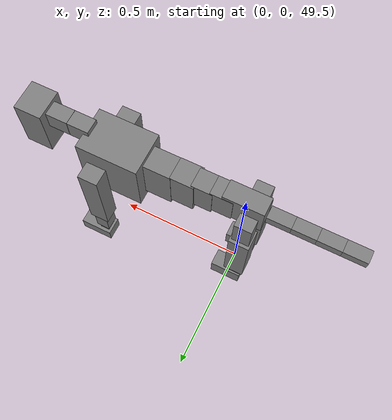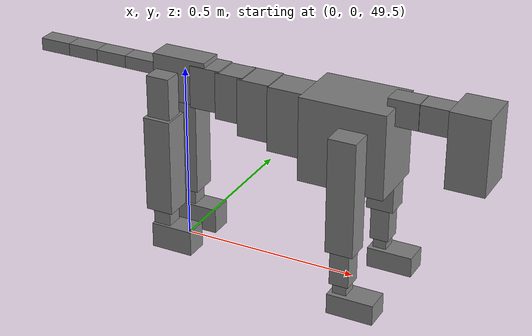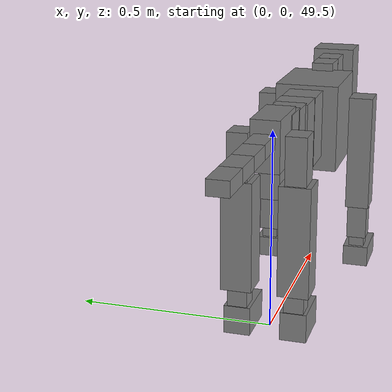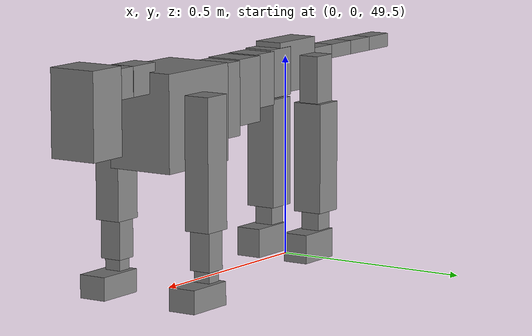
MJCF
<mujoco model="dog">

    <default>
        <joint armature="0.02" stiffness="1" damping="0.2" limited="true"/>
        <geom condim="3" friction="1 0.05 0.05" margin="0.01"/>
        <motor ctrllimited="true" ctrlrange="-1.0 1.0" forcelimited="true" gear="50"/>
    </default>

    <compiler inertiafromgeom="true" angle="radian"/>

    <option timestep="0.016" iterations="50" tolerance="1e-10" solver="Newton" jacobian="dense" cone="pyramidal"/>

    <size nconmax="20000" njmax="60000" nstack="5000000"/>
    <visual>
        <map force="0.1" zfar="30"/>
        <rgba haze="0.15 0.25 0.35 1"/>
        <quality shadowsize="2048"/>
        <global offwidth="800" offheight="800"/>
    </visual>

    <asset>
        <texture type="skybox" builtin="gradient" rgb1="0.3 0.5 0.7" rgb2="0 0 0" width="512" height="512"/>
        <texture name="texplane" type="2d" builtin="checker" rgb1=".2 .3 .4" rgb2=".1 0.15 0.2" width="512" height="512"
                 mark="cross" markrgb=".8 .8 .8"/>
        <texture name="texgeom" type="cube" builtin="flat" mark="cross" width="127" height="1278" rgb1="0.8 0.6 0.4"
                 rgb2="0.8 0.6 0.4" markrgb="1 1 1" random="0.01"/>

        <material name="matplane" reflectance="0.3" texture="texplane" texrepeat="1 1" texuniform="true"/>
        <material name="matgeom" texture="texgeom" texuniform="true" rgba="0.8 0.6 .4 1"/>
    </asset>

    <worldbody>
        <geom name="floor" pos="0 0 0" size="0 0 .25" type="plane" material="matplane" condim="3"/>

        <light directional="false" diffuse=".2 .2 .2" specular="0 0 0" pos="0 0 5" dir="0 0 -1" castshadow="false"/>
        <light mode="targetbodycom" target="torso" directional="false" diffuse=".8 .8 .8" specular="0.3 0.3 0.3"
               pos="0 0 4.0" dir="0 0 -1"/>

        <body name="root" pos="0 0 50">
            <freejoint name="root_1"/>
            <geom type="box" pos="0 0 -0.02" size="0.0774  0.0358  0.063" density="2030"/>

            <body name="spine1" pos="0.054 0 0">
                <joint name="spine1_y" axis="0 1 0" range="0 0.7" limited="true"/>
                <geom type="box" pos="0.02375 0 -0.03" size="0.04375  0.0375  0.05985" density="2030"/>

                <body name="spine2" pos="0.0612 0 0">
                    <joint name="spine2_y" axis="0 1 0" range="-0.15 0.15" limited="true"/>
                    <geom type="box" pos="0.03555  0  -0.04" size="0.04055  0.039  0.06615" density="2030"/>

                    <body name="spine3" pos="0.0730 0 0">
                        <joint name="spine3_y" axis="0 1 0" range="-0.15 0.15" limited="true"/>
                        <geom type="box" pos="0.03555  0  -0.057" size="0.04555  0.0445  0.081" density="2030"/>

                        <body name="spine4" pos="0.0780 0 0">
                            <joint name="spine4_y" axis="0 1 0" range="-0.15 0.15" limited="true"/>
                            <geom type="box" pos="0.05265  0  -0.07" size="0.05265  0.045  0.09135" density="2030"/>

                            <body name="torso" pos="0.1082 0 0">
                                <joint name="torso_y" axis="0 1 0" range="-0.15 0.15" limited="true"/>
                                <geom type="box" pos="0.11925  0  -0.085" size="0.11925  0.085  0.11745"
                                      density="2030"/>

                                <body name="neck1" pos="0.2160  0   0.0180">
                                    <joint name="neck1_y" axis="0 1 0" range="-1.2  -1" limited="true"/>
                                    <geom type="box" pos="0.0423  0  0" size="0.0423  0.03  0.036" density="2325"/>

                                    <body name="neck2" pos="0.0853  0  0">
                                        <joint name="neck2_y" axis="0 1 0" range="0.1  0" limited="true"/>
                                        <geom type="box" pos="0.0423  0  0" size="0.0423  0.03  0.036" density="2325"/>

                                        <body name="head" pos="0.0853  0  0">
                                            <joint name="head_y" axis="0 1 0" range="-0.3  -0.2" limited="true"/>
                                            <geom type="box" pos="0.0531  0  -0.055" size="0.0531  0.06  0.1044"
                                                  density="4030"/>

                                        </body>
                                    </body>
                                </body>

                                <body name="front_shoulder" pos="0.156  0   -0.0480">
                                    <joint name="front_shoulder_y" axis="0 1 0" range="-1 1.5" limited="true"/>
                                    <geom type="box" pos="0 0.13 -0.1332" size="0.0381  0.0326  0.1599" density="1158"/>
                                    <geom type="box" pos="0 -0.13 -0.1332" size="0.0381  0.0326  0.1599"
                                          density="1158"/>

                                    <body name="front_elbow" pos="0  0  -0.2664">
                                        <joint name="front_elbow_y" axis="0 1 0" range="-2 0" limited="true"/>
                                        <geom type="box" pos="0 0.13 -0.0607" size="0.0267  0.0273  0.0607"
                                              density="1081"/>
                                        <geom type="box" pos="0 -0.13 -0.0607" size="0.0267  0.0273  0.0607"
                                              density="1081"/>

                                        <body name="front_wrist" pos="0  0  -0.1213">
                                            <joint name="front_wrist_y" axis="0 1 0" range="-0.2 0" limited="true"/>
                                            <geom type="box" pos="0 0.13 -0.0216" size="0.0191  0.0212  0.0348"
                                                  density="1664"/>
                                            <geom type="box" pos="0 -0.13 -0.0216" size="0.0191  0.0212  0.0348"
                                                  density="1664"/>

                                            <body name="front_finger_end" pos="0  0  -0.0432">
                                                <joint name="front_finger_y" axis="0 1 0" range="-0.4 1"
                                                       limited="true"/>
                                                <geom type="box" pos="0.0352  0.13  -0.0135"
                                                      size="0.0645  0.0352  0.0285" density="1515"/>
                                                <geom type="box" pos="0.0352  -0.13  -0.0135"
                                                      size="0.0645  0.0352  0.0285" density="1515"/>

                                            </body>

                                        </body>
                                    </body>
                                </body>

                            </body>
                        </body>
                    </body>
                </body>
            </body>

            <body name="back_hip" pos="-0.03 0 -0.018">
                <joint name="back_hip_y" axis="0 1 0" range="-1.5 0.3" limited="true"/>
                <geom type="box" pos="0 0.07 -0.0554" size="0.0329  0.0258  0.0782" density="1154"/>
                <geom type="box" pos="0 -0.07 -0.0554" size="0.0329  0.0258  0.0782" density="1154"/>

                <body name="back_knee" pos="0  0  -0.1109">
                    <joint name="back_knee_y" axis="0 1 0" range="0 2.8" limited="true"/>
                    <geom type="box" pos="0 0.07 -0.1218" size="0.0390  0.0385  0.1374" density="1227"/>
                    <geom type="box" pos="0 -0.07 -0.1218" size="0.0390  0.0385  0.1374" density="1227"/>

                    <body name="back_ankle" pos="0  0  -0.2437">
                        <joint name="back_ankle_y" axis="0 1 0" range="-2.2 0" limited="true"/>
                        <geom type="box" pos="0 0.07 -0.0385" size="0.0247  0.0247  0.0498" density="1284"/>
                        <geom type="box" pos="0 -0.07 -0.0385" size="0.0247  0.0247  0.0498" density="1284"/>

                        <body name="back_toe_end" pos="0  0  -0.0770">
                            <joint name="back_toe_y" axis="0 1 0" range="-0.4 1" limited="true"/>
                            <geom type="box" pos="0.0327  0.07  -0.0210" size="0.0599  0.0327  0.0360" density="1515"/>
                            <geom type="box" pos="0.0327  -0.07  -0.0210" size="0.0599  0.0327  0.0360" density="1515"/>

                        </body>
                    </body>
                </body>
            </body>

            <body name="tail1" pos="-0.074 0 -0.006">
                <joint name="tail1_y" axis="0 1 0" range="-0.2 0.2" limited="true"/>
                <geom type="box" pos="-0.0536  0  0" size="0.045  0.025  0.0175" density="1587"/>

                <body name="tail2" pos="-0.09 0 0">
                    <joint name="tail2_y" axis="0 1 0" range="-0.2 0.2" limited="true"/>
                    <geom type="box" pos="-0.0536  0  0" size="0.045  0.025  0.0175" density="1587"/>

                    <body name="tail3" pos="-0.09 0 0">
                        <joint name="tail3_y" axis="0 1 0" range="-0.2 0.2" limited="true"/>
                        <geom type="box" pos="-0.0536  0  0" size="0.045  0.025  0.0175" density="1587"/>

                        <body name="tail4" pos="-0.09 0 0">
                            <joint name="tail4_y" axis="0 1 0" range="-0.2 0.2" limited="true"/>
                            <geom type="box" pos="-0.0536  0  0" size="0.045  0.025  0.0175" density="1587"/>

                        </body>
                    </body>
                </body>
            </body>
        </body>
    </worldbody>

    <actuator>
        <motor joint="spine1_y" forcerange="-150 150     "/>
        <motor joint="spine2_y" forcerange="-150 150     "/>
        <motor joint="spine3_y" forcerange="-150 150     "/>
        <motor joint="spine4_y" forcerange="-150 150     "/>
        <motor joint="torso_y" forcerange="-150 150     "/>
        <motor joint="neck1_y" forcerange="-100 100       "/>
        <motor joint="neck2_y" forcerange="-100 100       "/>
        <motor joint="head_y" forcerange="-150 150       "/>
        <motor joint="front_shoulder_y" forcerange="-131.86 185.30"/>
        <motor joint="front_elbow_y" forcerange="-125.92 172.27"/>
        <motor joint="front_wrist_y" forcerange="-82.74 86.63"/>
        <motor joint="front_finger_y" forcerange="-91.23 56.54"/>
        <motor joint="back_hip_y" forcerange="-326.11 217.85"/>
        <motor joint="back_knee_y" forcerange="-390.41 369.08"/>
        <motor joint="back_angle_y" forcerange="-133.33 161.25"/>
        <motor joint="back_toe_y" forcerange="-107.53 74.00"/>
        <motor joint="tail1_y" forcerange="-50 50     "/>
        <motor joint="tail2_y" forcerange="-50 50     "/>
        <motor joint="tail3_y" forcerange="-50 50     "/>
        <motor joint="tail4_y" forcerange="-50 50     "/>
    </actuator>
</mujoco>
